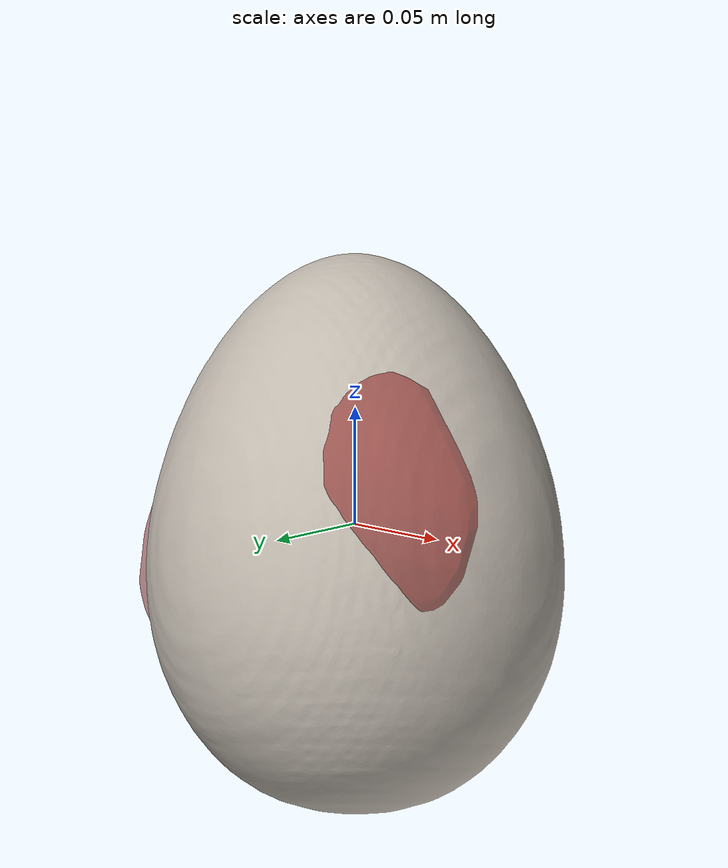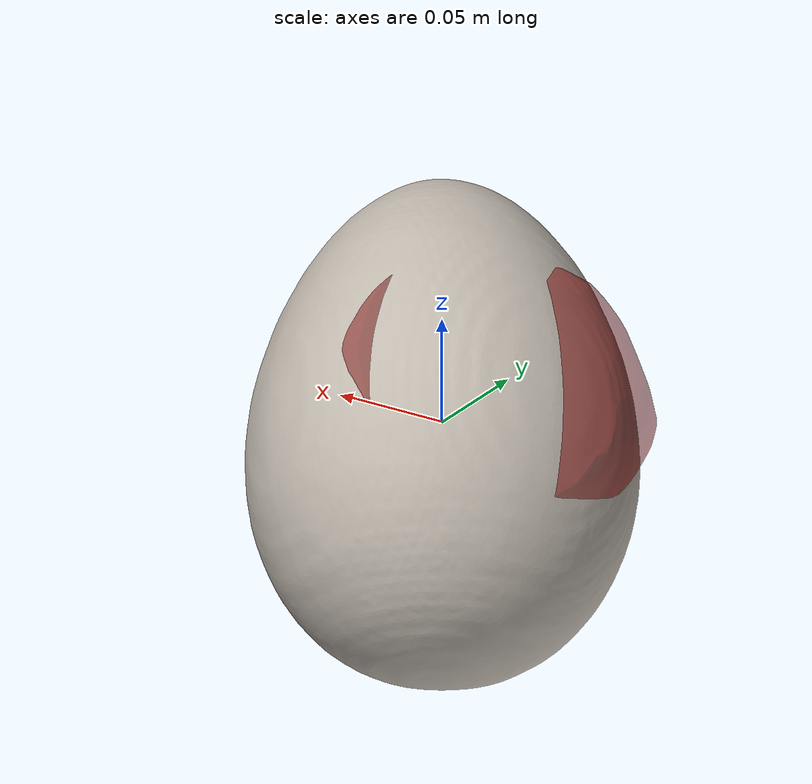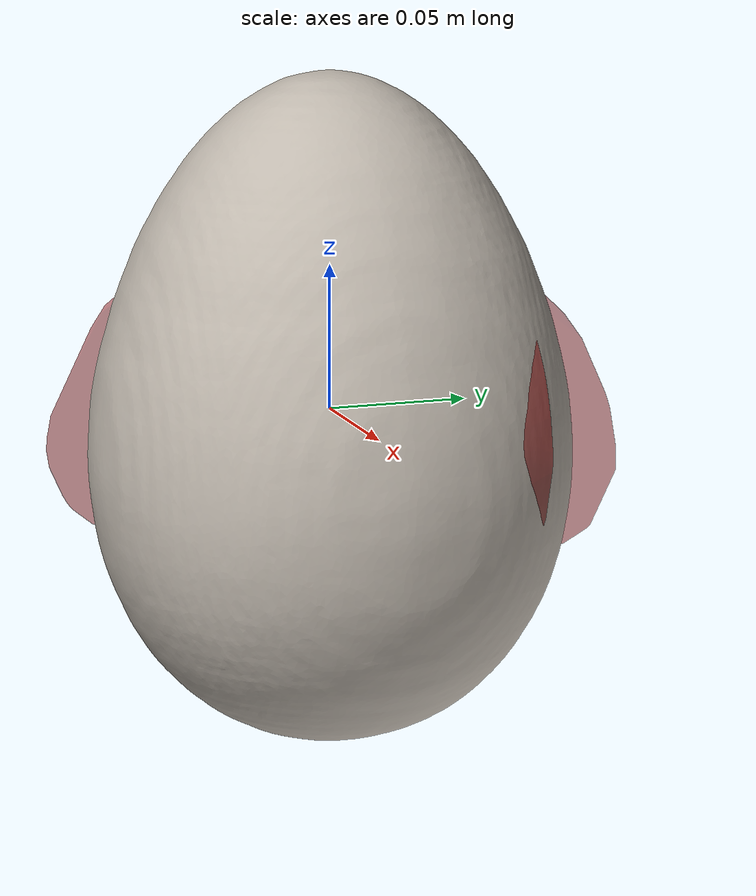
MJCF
<mujoco model="rolling_pin_0">
  <asset>
    <mesh file="visual/model_normalized_0.obj" name="model_normalized_0_vis" scale="0.23000000000000004 0.23000000000000004 0.23000000000000004" refquat="0.7071067811865475 0.0 0.0 0.7071067811865476"/>
    <texture type="2d" name="image0" file="visual/image0.png"/>
    <material name="lambert1.006" texture="image0" specular="0.5" shininess="0.25"/>
    <mesh file="collision/collision_mesh_collision_0.obj" name="rolling_collision_mesh_0" scale="0.23000000000000004 0.23000000000000004 0.23000000000000004" refquat="0.7071067811865475 0.0 0.0 0.7071067811865476"/>
    <mesh file="collision/collision_mesh_collision_1.obj" name="rolling_collision_mesh_1" scale="0.23000000000000004 0.23000000000000004 0.23000000000000004" refquat="0.7071067811865475 0.0 0.0 0.7071067811865476"/>
    <mesh file="collision/collision_mesh_collision_2.obj" name="rolling_collision_mesh_2" scale="0.23000000000000004 0.23000000000000004 0.23000000000000004" refquat="0.7071067811865475 0.0 0.0 0.7071067811865476"/>
  </asset>
  <custom><text name="material_gt" data="wood"/></custom>
  <default>
    <default class="region">
      <geom group="1" conaffinity="0" contype="0" rgba="0 1 0 0"/>
    </default>
    <default class="collision">
      <geom group="0" rgba="0.5 0 0 0.5" density="1000.0"/>
    </default>
  </default>
  <worldbody>
    <body>
      <body name="object">
        <geom solimp="0.998 0.998 0.001" solref="0.001 1" density="100" friction="0.95 0.3 0.1" type="mesh" mesh="model_normalized_0_vis" conaffinity="0" contype="0" group="1" material="lambert1.006"/>
        <geom class="region" name="reg_bbox" type="box" pos="0.0 0.0 0.0" size="0.016766825200000005 0.11500000000000002 0.016766825200000005"/>
        <geom mesh="rolling_collision_mesh_0" type="mesh" class="collision"/>
        <geom mesh="rolling_collision_mesh_1" type="mesh" class="collision"/>
        <geom mesh="rolling_collision_mesh_2" type="mesh" class="collision"/>
      </body>
    </body>
  </worldbody>
</mujoco>
